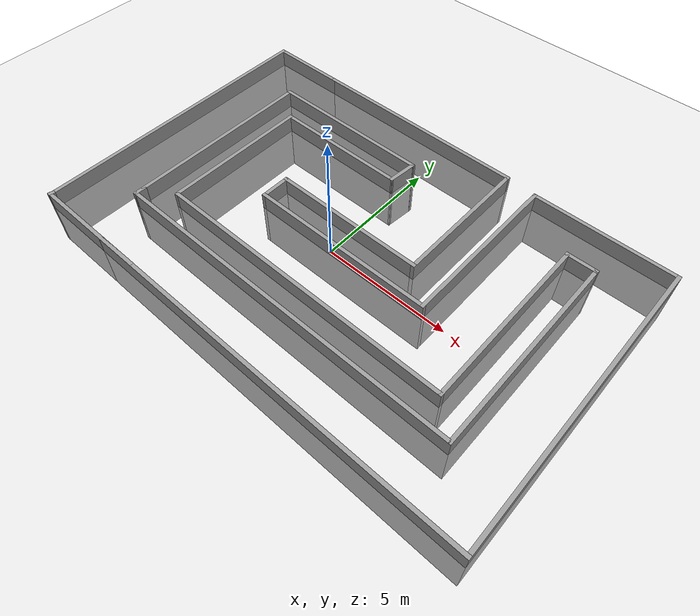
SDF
<sdf version="1.7">
 <world name="default">
  <light name="sun" type="directional">
   <pose>0 0 10 0 -0 0</pose>
   <diffuse>0.8 0.8 0.8 1</diffuse>
   <specular>0.2 0.2 0.2 1</specular>
   <attenuation>
    <range>1000</range>
    <constant>0.9</constant>
    <linear>0.01</linear>
    <quadratic>0.001</quadratic>
   </attenuation>
   <direction>-0.5 0.1 -0.9</direction>
   <spot><inner_angle>0</inner_angle><outer_angle>0</outer_angle><falloff>0</falloff></spot>
  </light>
  <model name="ground_plane">
   <static>1</static>
   <link name="link">
    <collision name="collision">
     <geometry><plane><normal>0 0 1</normal><size>100 100</size></plane></geometry>
     <surface>
      <contact><collide_bitmask>65535</collide_bitmask></contact>
      <friction><ode><mu>100</mu><mu2>50</mu2></ode></friction>
     </surface>
    </collision>
    <visual name="visual">
     <cast_shadows>0</cast_shadows>
     <geometry><plane><normal>0 0 1</normal><size>100 100</size></plane></geometry>
     <material>
      <script><uri>file://media/materials/scripts/gazebo.material</uri><name>Gazebo/Grey</name></script>
     </material>
    </visual>
   </link>
  </model>
  <gravity>0 0 -9.8</gravity>
  <magnetic_field>6e-06 2.3e-05 -4.2e-05</magnetic_field>
  <atmosphere type="adiabatic"/>
  <physics type="ode">
   <max_step_size>0.001</max_step_size>
   <real_time_factor>1</real_time_factor>
   <real_time_update_rate>1000</real_time_update_rate>
  </physics>
  <scene><ambient>0.4 0.4 0.4 1</ambient><background>0.7 0.7 0.7 1</background><shadows>1</shadows></scene>
  <spherical_coordinates>
   <surface_model>EARTH_WGS84</surface_model>
   <latitude_deg>0</latitude_deg>
   <longitude_deg>0</longitude_deg>
   <elevation>0</elevation>
   <heading_deg>0</heading_deg>
  </spherical_coordinates>
  <model name="two_hairpins">
   <pose>0.263842 0.688985 -1.84315 0 -0 0</pose>
   <link name="Wall_107">
    <collision name="Wall_107_Collision">
     <geometry><box><size>9 0.15 2.5</size></box></geometry>
     <pose>0 0 1.25 0 -0 0</pose>
    </collision>
    <visual name="Wall_107_Visual">
     <pose>0 0 1.25 0 -0 0</pose>
     <geometry><box><size>9 0.15 2.5</size></box></geometry>
     <material>
      <script><uri>file://media/materials/scripts/gazebo.material</uri><name>Gazebo/Grey</name></script>
      <ambient>1 1 1 1</ambient>
     </material>
     <meta><layer>0</layer></meta>
    </visual>
    <pose>-1.85363 5.98172 0 0 -0 3.14159</pose>
   </link>
   <link name="Wall_108">
    <collision name="Wall_108_Collision">
     <geometry><box><size>3.25 0.15 2.5</size></box></geometry>
     <pose>0 0 1.25 0 -0 0</pose>
    </collision>
    <visual name="Wall_108_Visual">
     <pose>0 0 1.25 0 -0 0</pose>
     <geometry><box><size>3.25 0.15 2.5</size></box></geometry>
     <material>
      <script><uri>file://media/materials/scripts/gazebo.material</uri><name>Gazebo/Grey</name></script>
      <ambient>1 1 1 1</ambient>
     </material>
     <meta><layer>0</layer></meta>
    </visual>
    <pose>-7.82863 5.98172 0 0 -0 3.14159</pose>
   </link>
   <link name="Wall_109">
    <collision name="Wall_109_Collision">
     <geometry><box><size>12 0.15 2.5</size></box></geometry>
     <pose>0 0 1.25 0 -0 0</pose>
    </collision>
    <visual name="Wall_109_Visual">
     <pose>0 0 1.25 0 -0 0</pose>
     <geometry><box><size>12 0.15 2.5</size></box></geometry>
     <material>
      <script><uri>file://media/materials/scripts/gazebo.material</uri><name>Gazebo/Grey</name></script>
      <ambient>1 1 1 1</ambient>
     </material>
     <meta><layer>0</layer></meta>
    </visual>
    <pose>-9.37863 0.056724 0 0 -0 -1.5708</pose>
   </link>
   <link name="Wall_110">
    <collision name="Wall_110_Collision">
     <geometry><box><size>0.25 0.15 2.5</size></box></geometry>
     <pose>0 0 1.25 0 -0 0</pose>
    </collision>
    <visual name="Wall_110_Visual">
     <pose>0 0 1.25 0 -0 0</pose>
     <geometry><box><size>0.25 0.15 2.5</size></box></geometry>
     <material>
      <script><uri>file://media/materials/scripts/gazebo.material</uri><name>Gazebo/Grey</name></script>
      <ambient>1 1 1 1</ambient>
     </material>
     <meta><layer>0</layer></meta>
    </visual>
    <pose>-9.39157 -5.91657 0 0 -0 -1.8326</pose>
   </link>
   <link name="Wall_111">
    <collision name="Wall_111_Collision">
     <geometry><box><size>5 0.15 2.5</size></box></geometry>
     <pose>0 0 1.25 0 -0 0</pose>
    </collision>
    <visual name="Wall_111_Visual">
     <pose>0 0 1.25 0 -0 0</pose>
     <geometry><box><size>5 0.15 2.5</size></box></geometry>
     <material>
      <script><uri>file://media/materials/scripts/gazebo.material</uri><name>Gazebo/Grey</name></script>
      <ambient>1 1 1 1</ambient>
     </material>
     <meta><layer>0</layer></meta>
    </visual>
    <pose>-6.97951 -5.96487 0 0 -0 0</pose>
   </link>
   <link name="Wall_113">
    <collision name="Wall_113_Collision">
     <geometry><box><size>6.75 0.15 2.5</size></box></geometry>
     <pose>0 0 1.25 0 -0 0</pose>
    </collision>
    <visual name="Wall_113_Visual">
     <pose>0 0 1.25 0 -0 0</pose>
     <geometry><box><size>6.75 0.15 2.5</size></box></geometry>
     <material>
      <script><uri>file://media/materials/scripts/gazebo.material</uri><name>Gazebo/Grey</name></script>
      <ambient>1 1 1 1</ambient>
     </material>
     <meta><layer>0</layer></meta>
    </visual>
    <pose>-3.79239 4.12029 0 0 -0 3.14159</pose>
   </link>
   <link name="Wall_114">
    <collision name="Wall_114_Collision">
     <geometry><box><size>7.75 0.15 2.5</size></box></geometry>
     <pose>0 0 1.25 0 -0 0</pose>
    </collision>
    <visual name="Wall_114_Visual">
     <pose>0 0 1.25 0 -0 0</pose>
     <geometry><box><size>7.75 0.15 2.5</size></box></geometry>
     <material>
      <script><uri>file://media/materials/scripts/gazebo.material</uri><name>Gazebo/Grey</name></script>
      <ambient>1 1 1 1</ambient>
     </material>
     <meta><layer>0</layer></meta>
    </visual>
    <pose>-7.09239 0.320294 0 0 -0 -1.5708</pose>
   </link>
   <link name="Wall_115">
    <collision name="Wall_115_Collision">
     <geometry><box><size>0.5 0.15 2.5</size></box></geometry>
     <pose>0 0 1.25 0 -0 0</pose>
    </collision>
    <visual name="Wall_115_Visual">
     <pose>0 0 1.25 0 -0 0</pose>
     <geometry><box><size>0.5 0.15 2.5</size></box></geometry>
     <material>
      <script><uri>file://media/materials/scripts/gazebo.material</uri><name>Gazebo/Grey</name></script>
      <ambient>1 1 1 1</ambient>
     </material>
     <meta><layer>0</layer></meta>
    </visual>
    <pose>-7.09239 -3.65471 0 0 -0 -1.5708</pose>
   </link>
   <link name="Wall_116">
    <collision name="Wall_116_Collision">
     <geometry><box><size>14.5 0.15 2.5</size></box></geometry>
     <pose>0 0 1.25 0 -0 0</pose>
    </collision>
    <visual name="Wall_116_Visual">
     <pose>0 0 1.25 0 -0 0</pose>
     <geometry><box><size>14.5 0.15 2.5</size></box></geometry>
     <material>
      <script><uri>file://media/materials/scripts/gazebo.material</uri><name>Gazebo/Grey</name></script>
      <ambient>1 1 1 1</ambient>
     </material>
     <meta><layer>0</layer></meta>
    </visual>
    <pose>0.082612 -3.82971 0 0 -0 0</pose>
   </link>
   <link name="Wall_117">
    <collision name="Wall_117_Collision">
     <geometry><box><size>8.25 0.15 2.5</size></box></geometry>
     <pose>0 0 1.25 0 -0 0</pose>
    </collision>
    <visual name="Wall_117_Visual">
     <pose>0 0 1.25 0 -0 0</pose>
     <geometry><box><size>8.25 0.15 2.5</size></box></geometry>
     <material>
      <script><uri>file://media/materials/scripts/gazebo.material</uri><name>Gazebo/Grey</name></script>
      <ambient>1 1 1 1</ambient>
     </material>
     <meta><layer>0</layer></meta>
    </visual>
    <pose>7.25761 0.220294 0 0 -0 1.5708</pose>
   </link>
   <link name="Wall_118">
    <collision name="Wall_118_Collision">
     <geometry><box><size>1.25 0.15 2.5</size></box></geometry>
     <pose>0 0 1.25 0 -0 0</pose>
    </collision>
    <visual name="Wall_118_Visual">
     <pose>0 0 1.25 0 -0 0</pose>
     <geometry><box><size>1.25 0.15 2.5</size></box></geometry>
     <material>
      <script><uri>file://media/materials/scripts/gazebo.material</uri><name>Gazebo/Grey</name></script>
      <ambient>1 1 1 1</ambient>
     </material>
     <meta><layer>0</layer></meta>
    </visual>
    <pose>6.70761 4.27029 0 0 -0 3.14159</pose>
   </link>
   <link name="Wall_119">
    <collision name="Wall_119_Collision">
     <geometry><box><size>7.25 0.15 2.5</size></box></geometry>
     <pose>0 0 1.25 0 -0 0</pose>
    </collision>
    <visual name="Wall_119_Visual">
     <pose>0 0 1.25 0 -0 0</pose>
     <geometry><box><size>7.25 0.15 2.5</size></box></geometry>
     <material>
      <script><uri>file://media/materials/scripts/gazebo.material</uri><name>Gazebo/Grey</name></script>
      <ambient>1 1 1 1</ambient>
     </material>
     <meta><layer>0</layer></meta>
    </visual>
    <pose>6.15761 0.720294 0 0 -0 -1.5708</pose>
   </link>
   <link name="Wall_120">
    <collision name="Wall_120_Collision">
     <geometry><box><size>12.25 0.15 2.5</size></box></geometry>
     <pose>0 0 1.25 0 -0 0</pose>
    </collision>
    <visual name="Wall_120_Visual">
     <pose>0 0 1.25 0 -0 0</pose>
     <geometry><box><size>12.25 0.15 2.5</size></box></geometry>
     <material>
      <script><uri>file://media/materials/scripts/gazebo.material</uri><name>Gazebo/Grey</name></script>
      <ambient>1 1 1 1</ambient>
     </material>
     <meta><layer>0</layer></meta>
    </visual>
    <pose>0.107612 -2.82971 0 0 -0 3.14159</pose>
   </link>
   <link name="Wall_123">
    <collision name="Wall_123_Collision">
     <geometry><box><size>6 0.15 2.5</size></box></geometry>
     <pose>0 0 1.25 0 -0 0</pose>
    </collision>
    <visual name="Wall_123_Visual">
     <pose>0 0 1.25 0 -0 0</pose>
     <geometry><box><size>6 0.15 2.5</size></box></geometry>
     <material>
      <script><uri>file://media/materials/scripts/gazebo.material</uri><name>Gazebo/Grey</name></script>
      <ambient>1 1 1 1</ambient>
     </material>
     <meta><layer>0</layer></meta>
    </visual>
    <pose>-5.94239 0.095294 0 0 -0 1.5708</pose>
   </link>
   <link name="Wall_124">
    <collision name="Wall_124_Collision">
     <geometry><box><size>5.5 0.15 2.5</size></box></geometry>
     <pose>0 0 1.25 0 -0 0</pose>
    </collision>
    <visual name="Wall_124_Visual">
     <pose>0 0 1.25 0 -0 0</pose>
     <geometry><box><size>5.5 0.15 2.5</size></box></geometry>
     <material>
      <script><uri>file://media/materials/scripts/gazebo.material</uri><name>Gazebo/Grey</name></script>
      <ambient>1 1 1 1</ambient>
     </material>
     <meta><layer>0</layer></meta>
    </visual>
    <pose>-3.26739 3.02029 0 0 -0 0</pose>
   </link>
   <link name="Wall_125">
    <collision name="Wall_125_Collision">
     <geometry><box><size>1.25454 0.15 2.5</size></box></geometry>
     <pose>0 0 1.25 0 -0 0</pose>
    </collision>
    <visual name="Wall_125_Visual">
     <pose>0 0 1.25 0 -0 0</pose>
     <geometry><box><size>1.25454 0.15 2.5</size></box></geometry>
     <material>
      <script><uri>file://media/materials/scripts/gazebo.material</uri><name>Gazebo/Grey</name></script>
      <ambient>1 1 1 1</ambient>
     </material>
     <meta><layer>0</layer></meta>
    </visual>
    <pose>-0.542388 3.5703 0 0 -0 1.48014</pose>
   </link>
   <link name="Wall_127">
    <collision name="Wall_127_Collision">
     <geometry><box><size>6.75 0.15 2.5</size></box></geometry>
     <pose>0 0 1.25 0 -0 0</pose>
    </collision>
    <visual name="Wall_127_Visual">
     <pose>0 0 1.25 0 -0 0</pose>
     <geometry><box><size>6.75 0.15 2.5</size></box></geometry>
     <material>
      <script><uri>file://media/materials/scripts/gazebo.material</uri><name>Gazebo/Grey</name></script>
      <ambient>1 1 1 1</ambient>
     </material>
     <meta><layer>0</layer></meta>
    </visual>
    <pose>3.82137 2.58172 0 0 -0 -1.5708</pose>
   </link>
   <link name="Wall_128">
    <collision name="Wall_128_Collision">
     <geometry><box><size>7.5 0.15 2.5</size></box></geometry>
     <pose>0 0 1.25 0 -0 0</pose>
    </collision>
    <visual name="Wall_128_Visual">
     <pose>0 0 1.25 0 -0 0</pose>
     <geometry><box><size>7.5 0.15 2.5</size></box></geometry>
     <material>
      <script><uri>file://media/materials/scripts/gazebo.material</uri><name>Gazebo/Grey</name></script>
      <ambient>1 1 1 1</ambient>
     </material>
     <meta><layer>0</layer></meta>
    </visual>
    <pose>0.146368 -0.718276 0 0 -0 3.14159</pose>
   </link>
   <link name="Wall_129">
    <collision name="Wall_129_Collision">
     <geometry><box><size>1.25 0.15 2.5</size></box></geometry>
     <pose>0 0 1.25 0 -0 0</pose>
    </collision>
    <visual name="Wall_129_Visual">
     <pose>0 0 1.25 0 -0 0</pose>
     <geometry><box><size>1.25 0.15 2.5</size></box></geometry>
     <material>
      <script><uri>file://media/materials/scripts/gazebo.material</uri><name>Gazebo/Grey</name></script>
      <ambient>1 1 1 1</ambient>
     </material>
     <meta><layer>0</layer></meta>
    </visual>
    <pose>-3.52863 -0.168276 0 0 -0 1.5708</pose>
   </link>
   <link name="Wall_130">
    <collision name="Wall_130_Collision">
     <geometry><box><size>6.25 0.15 2.5</size></box></geometry>
     <pose>0 0 1.25 0 -0 0</pose>
    </collision>
    <visual name="Wall_130_Visual">
     <pose>0 0 1.25 0 -0 0</pose>
     <geometry><box><size>6.25 0.15 2.5</size></box></geometry>
     <material>
      <script><uri>file://media/materials/scripts/gazebo.material</uri><name>Gazebo/Grey</name></script>
      <ambient>1 1 1 1</ambient>
     </material>
     <meta><layer>0</layer></meta>
    </visual>
    <pose>-0.478632 0.381724 0 0 -0 0</pose>
   </link>
   <link name="Wall_131">
    <collision name="Wall_131_Collision">
     <geometry><box><size>5.75 0.15 2.5</size></box></geometry>
     <pose>0 0 1.25 0 -0 0</pose>
    </collision>
    <visual name="Wall_131_Visual">
     <pose>0 0 1.25 0 -0 0</pose>
     <geometry><box><size>5.75 0.15 2.5</size></box></geometry>
     <material>
      <script><uri>file://media/materials/scripts/gazebo.material</uri><name>Gazebo/Grey</name></script>
      <ambient>1 1 1 1</ambient>
     </material>
     <meta><layer>0</layer></meta>
    </visual>
    <pose>2.57137 3.18172 0 0 -0 1.5708</pose>
   </link>
   <link name="Wall_96">
    <collision name="Wall_96_Collision">
     <geometry><box><size>15.75 0.15 2.5</size></box></geometry>
     <pose>0 0 1.25 0 -0 0</pose>
    </collision>
    <visual name="Wall_96_Visual">
     <pose>0 0 1.25 0 -0 0</pose>
     <geometry><box><size>15.75 0.15 2.5</size></box></geometry>
     <material>
      <script><uri>file://media/materials/scripts/gazebo.material</uri><name>Gazebo/Grey</name></script>
      <ambient>1 1 1 1</ambient>
     </material>
     <meta><layer>0</layer></meta>
    </visual>
    <pose>1.62137 -5.96828 0 0 -0 0</pose>
   </link>
   <link name="Wall_97">
    <collision name="Wall_97_Collision">
     <geometry><box><size>12 0.15 2.5</size></box></geometry>
     <pose>0 0 1.25 0 -0 0</pose>
    </collision>
    <visual name="Wall_97_Visual">
     <pose>0 0 1.25 0 -0 0</pose>
     <geometry><box><size>12 0.15 2.5</size></box></geometry>
     <material>
      <script><uri>file://media/materials/scripts/gazebo.material</uri><name>Gazebo/Grey</name></script>
      <ambient>1 1 1 1</ambient>
     </material>
     <meta><layer>0</layer></meta>
    </visual>
    <pose>9.42137 -0.043276 0 0 -0 1.5708</pose>
   </link>
   <link name="Wall_98">
    <collision name="Wall_98_Collision">
     <geometry><box><size>5.75 0.15 2.5</size></box></geometry>
     <pose>0 0 1.25 0 -0 0</pose>
    </collision>
    <visual name="Wall_98_Visual">
     <pose>0 0 1.25 0 -0 0</pose>
     <geometry><box><size>5.75 0.15 2.5</size></box></geometry>
     <material>
      <script><uri>file://media/materials/scripts/gazebo.material</uri><name>Gazebo/Grey</name></script>
      <ambient>1 1 1 1</ambient>
     </material>
     <meta><layer>0</layer></meta>
    </visual>
    <pose>6.62137 5.88172 0 0 -0 3.14159</pose>
   </link>
   <static>1</static>
  </model>
 </world>
</sdf>
